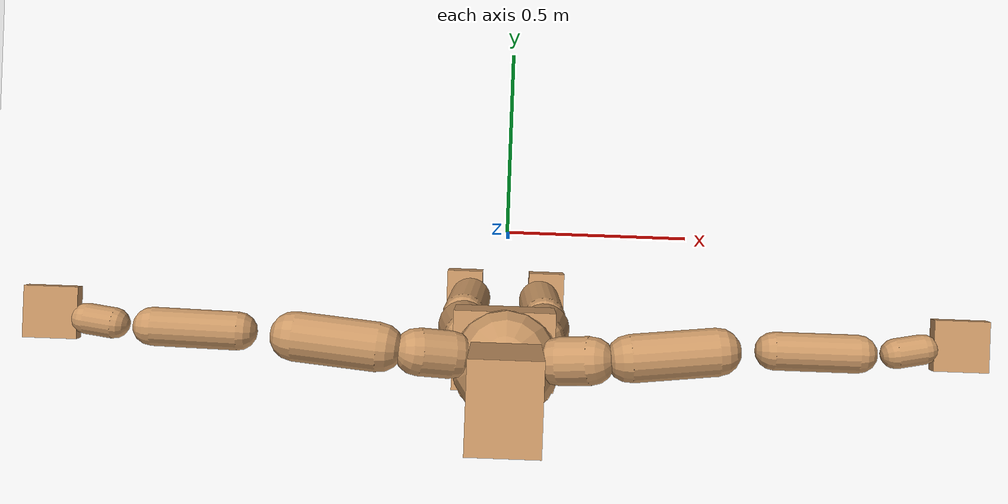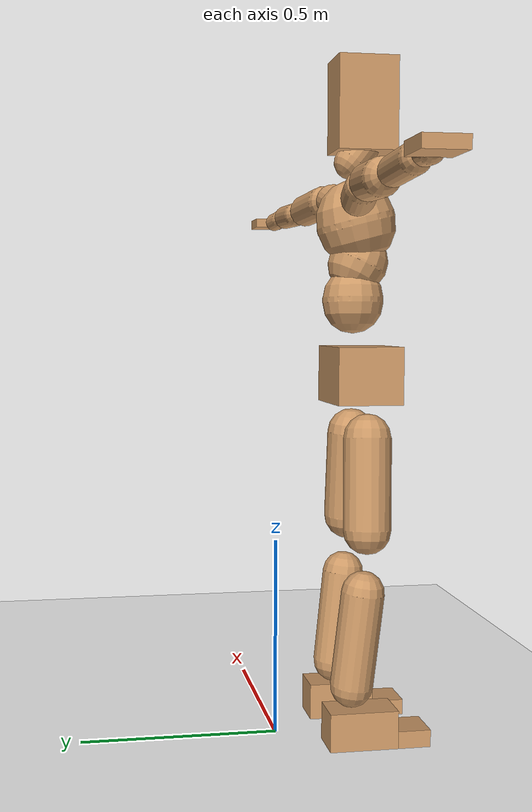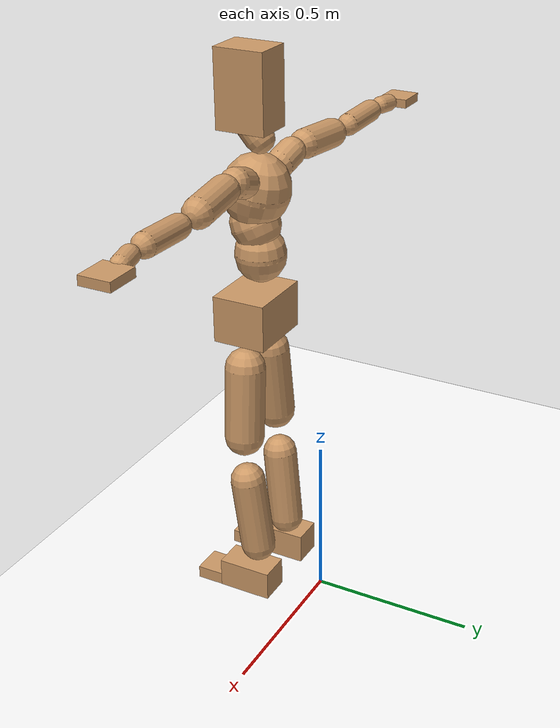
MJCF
<mujoco model="humanoid">
  <option integrator="implicitfast" />

  <visual>
    <global offwidth="1280" offheight="960" />
    <headlight active="1" ambient="0.34 0.34 0.34" diffuse="0.5 0.5 0.5" />
  </visual>

  <default>
    <joint damping="2" stiffness="2" armature="0.01" limited="true" solimplimit="0 .99 .01" />
    <geom condim="1" friction="0.7 0.005 0.0001" solimp=".99 .99 .003" solref="0.015 1" margin="0.001" rgba="0.8 0.6 .4 1" />
    <default class="smplcontact">
      <geom condim="3" friction="1. 0.005 0.0001" solref="0.015 1" solimp="0.98 0.98 0.001" priority="1" />
    </default>
    <default class="stiff_medium">
      <joint stiffness="10" />
    </default>
    <default class="stiff_medium_higher">
      <joint stiffness="50" />
    </default>
    <default class="stiff_high">
      <joint stiffness="100" />
    </default>
  </default>

  <asset>
    <texture type="skybox" builtin="gradient" rgb1="0.99 0.99 0.99" rgb2="0.608 0.828 0.892" width="100" />
    <texture builtin="flat" height="1278" mark="cross" markrgb="1 1 1" name="texgeom" random="0.01" rgb1="0.8 0.6 0.4" rgb2="0.8 0.6 0.4" type="cube" width="127" />
    <texture name="texplane" type="2d" builtin="checker" markrgb="1 1 1" rgb1="0.756 0.772 0.76" rgb2="0.6 0.6 0.6" width="100" height="100" />
    <material name="MatPlane" reflectance="0.5" texture="texplane" texrepeat="1 1" texuniform="true" />
    <material name="geom" texture="texgeom" texuniform="true" />
  </asset>

  <worldbody>
    <light name="tracking_light" pos="0 0 7" dir="0 0 -1" directional="true" cutoff="100" exponent="1" diffuse="1 1 1" specular="0.1 0.1 0.1" mode="trackcom" />
    <camera name="back" pos="0 3 2.4" xyaxes="-1 0 0 0 -1 2" mode="trackcom" />
    <camera name="side" pos="-3 0 2.4" xyaxes="0 -1 0 1 0 2" mode="trackcom" />
    <camera name="front_side" pos="-2.8 -2.8 0.8" xyaxes="0.5 -0.5 0 0.1 0.1 1" mode="trackcom" />
    <geom condim="3" name="floor" pos="0 0 0" rgba="1 1 1 1" size="100 100 .2" type="plane" material="MatPlane" />
    <body name="Pelvis" pos="-0.0018 -0.2233 0.9367" euler="90 0 0">
      <site name="Pelvis" size="0.01" />
      <freejoint name="Pelvis" />
      <geom type="box" pos="-0.0000 -0.0121 -0.0055" size="0.1069 0.0722 0.083" quat="1.0000 0.0000 0.0000 0.0000" density="3165.830099" name="Pelvis" />
      <body name="L_Hip" pos="0.0695 -0.0914 -0.0068">
        <joint name="L_Hip_x" type="hinge" pos="0 0 0" axis="1 0 0" stiffness="10.0" range="-160.0 22.92" class="stiff_medium" damping="14.999999999999998" armature="0.009999999999999998"/>
        <joint name="L_Hip_y" type="hinge" pos="0 0 0" axis="0 1 0" stiffness="10.0" range="-70.0 70.0" class="stiff_medium" damping="10.000000000000004" armature="0.01000000000000001"/>
        <joint name="L_Hip_z" type="hinge" pos="0 0 0" axis="0 0 1" stiffness="10.0" range="-28.65 90.0" class="stiff_medium" damping="10.0" armature="0.01"/>
        <geom type="capsule" density="2040.816327" fromto="0.0069 -0.075 -0.0009 0.0274 -0.3002 -0.0036" size="0.0615" name="L_Hip" />
        <body name="L_Knee" pos="0.0343 -0.3752 -0.0045">
          <joint name="L_Knee_x" type="hinge" pos="0 0 0" axis="1 0 0" range="-5.16 171.89" damping="7.999999999999995" armature="0.009999999999999986" stiffness="2.0"/>
          <joint name="L_Knee_y" type="hinge" pos="0 0 0" axis="0 1 0" range="-4.58 6.88" damping="8.000000000000004" armature="0.010000000000000009" stiffness="2.0"/>
          <joint name="L_Knee_z" type="hinge" pos="0 0 0" axis="0 0 1" range="-6.88 4.58" damping="7.999999999999997" armature="0.009999999999999993" stiffness="2.0"/>
          <geom type="capsule" density="1234.567901" fromto="-0.0027 -0.0796 -0.0087 -0.0109 -0.3184 -0.035" size="0.0541" name="L_Knee" />
          <body name="L_Ankle" pos="-0.0136 -0.398 -0.0437">
            <joint name="L_Ankle_x" type="hinge" pos="0 0 0" axis="1 0 0" range="-45.84 45.84" class="stiff_medium" damping="5.999999999999998" armature="0.009999999999999993" stiffness="10.0"/>
            <joint name="L_Ankle_y" type="hinge" pos="0 0 0" axis="0 1 0" range="-74.48 22.92" class="stiff_medium" damping="3.000000000000001" armature="0.010000000000000005" stiffness="10.0"/>
            <joint name="L_Ankle_z" type="hinge" pos="0 0 0" axis="0 0 1" range="-4.58 4.58" class="stiff_medium" damping="5.999999999999854" armature="0.009999999999999516" stiffness="10.0"/>
            <geom type="box" pos="0.0233 -0.0239 0.0242" size="0.0483 0.0464 0.085" quat="1.0000 0.0000 0.0000 0.0000" density="449.071558" name="L_Ankle" class="smplcontact" />
            <body name="L_Toe" pos="0.0264 -0.0558 0.1193">
              <joint name="L_Toe_x" type="hinge" pos="0 0 0" axis="1 0 0" range="-91.67 22.92" armature="0.00999999999999797" damping="1.999999999999797" stiffness="2.0"/>
              <joint name="L_Toe_y" type="hinge" pos="0 0 0" axis="0 1 0" range="-4.58 4.58" armature="0.01" damping="2.0" stiffness="2.0"/>
              <joint name="L_Toe_z" type="hinge" pos="0 0 0" axis="0 0 1" range="-4.58 4.58" armature="0.009999999999997513" damping="1.9999999999997513" stiffness="2.0"/>
              <geom type="box" pos="-0.003 0.0055 0.0248" size="0.0478 0.02 0.0496" quat="1.0000 0.0000 0.0000 0.0000" density="423.206892" name="L_Toe" class="smplcontact" />
            </body>
          </body>
        </body>
      </body>
      <body name="R_Hip" pos="-0.0677 -0.0905 -0.0043">
        <joint name="R_Hip_x" type="hinge" pos="0 0 0" axis="1 0 0" stiffness="10.0" range="-160.0 22.92" class="stiff_medium" damping="14.999999999999998" armature="0.009999999999999998"/>
        <joint name="R_Hip_y" type="hinge" pos="0 0 0" axis="0 1 0" stiffness="10.0" range="-70.0 70.0" class="stiff_medium" damping="10.000000000000004" armature="0.01000000000000001"/>
        <joint name="R_Hip_z" type="hinge" pos="0 0 0" axis="0 0 1" stiffness="10.0" range="-90.0 28.65" class="stiff_medium" damping="10.0" armature="0.01"/>
        <geom type="capsule" density="2040.816327" fromto="-0.0077 -0.0765 -0.0018 -0.0306 -0.3061 -0.0071" size="0.0606" name="R_Hip" />
        <body name="R_Knee" pos="-0.0383 -0.3826 -0.0089">
          <joint name="R_Knee_x" type="hinge" pos="0 0 0" axis="1 0 0" range="-5.16 171.89" damping="7.999999999999995" armature="0.009999999999999986" stiffness="2.0"/>
          <joint name="R_Knee_y" type="hinge" pos="0 0 0" axis="0 1 0" range="-6.88 4.58" damping="8.000000000000004" armature="0.010000000000000009" stiffness="2.0"/>
          <joint name="R_Knee_z" type="hinge" pos="0 0 0" axis="0 0 1" range="-4.58 6.88" damping="7.999999999999997" armature="0.009999999999999993" stiffness="2.0"/>
          <geom type="capsule" density="1234.567901" fromto="0.0032 -0.0797 -0.0085 0.0126 -0.3187 -0.0338" size="0.0541" name="R_Knee" />
          <body name="R_Ankle" pos="0.0158 -0.3984 -0.0423">
            <joint name="R_Ankle_x" type="hinge" pos="0 0 0" axis="1 0 0" range="-45.84 45.84" class="stiff_medium" damping="5.999999999999998" armature="0.009999999999999993" stiffness="10.0"/>
            <joint name="R_Ankle_y" type="hinge" pos="0 0 0" axis="0 1 0" range="-22.92 74.48" class="stiff_medium" damping="3.000000000000001" armature="0.010000000000000005" stiffness="10.0"/>
            <joint name="R_Ankle_z" type="hinge" pos="0 0 0" axis="0 0 1" range="-4.58 4.58" class="stiff_medium" damping="5.999999999999854" armature="0.009999999999999516" stiffness="10.0"/>
            <geom type="box" pos="-0.0212 -0.0174 0.0256" size="0.0483 0.0478 0.0865" quat="1.0000 0.0000 0.0000 0.0000" density="434.700981" name="R_Ankle" class="smplcontact" />
            <body name="R_Toe" pos="-0.0254 -0.0481 0.1233">
              <joint name="R_Toe_x" type="hinge" pos="0 0 0" axis="1 0 0" range="-91.67 22.92" armature="0.00999999999999797" damping="1.999999999999797" stiffness="2.0"/>
              <joint name="R_Toe_y" type="hinge" pos="0 0 0" axis="0 1 0" range="-4.58 4.58" armature="0.01" damping="2.0" stiffness="2.0"/>
              <joint name="R_Toe_z" type="hinge" pos="0 0 0" axis="0 0 1" range="-4.58 4.58" armature="0.009999999999997513" damping="1.9999999999997513" stiffness="2.0"/>
              <geom type="box" pos="0.0042 0.0045 0.0227" size="0.0479 0.0216 0.0493" quat="1.0000 0.0000 0.0000 0.0000" density="407.384095" name="R_Toe" class="smplcontact" />
            </body>
          </body>
        </body>
      </body>
      <body name="Torso" pos="-0.0025 0.109 -0.0267">
        <joint name="Torso_x" type="hinge" pos="0 0 0" axis="1 0 0" range="-25.78 57.3" class="stiff_medium" damping="13.469708142448871" armature="0.009028587369213336" stiffness="8.931287058823528"/>
        <joint name="Torso_y" type="hinge" pos="0 0 0" axis="0 1 0" range="-57.3 57.3" class="stiff_high" damping="15.774788625521023" armature="0.006903114127630073" stiffness="90.12018039215684"/>
        <joint name="Torso_z" type="hinge" pos="0 0 0" axis="0 0 1" range="-34.38 34.38" class="stiff_high" damping="17.425169137497218" armature="0.008295886649589074" stiffness="91.50213"/>
        <geom type="capsule" density="2040.816327" fromto="0.0025 0.0608 0.0005 0.003 0.0743 0.0006" size="0.0769" name="Torso" />
        <body name="Spine" pos="0.0055 0.1352 0.0011">
          <joint name="Spine_x" type="hinge" pos="0 0 0" axis="1 0 0" stiffness="8.895824509803921" range="-25.78 57.3" class="stiff_medium" damping="13.544372535574256" armature="0.00916535003736198"/>
          <joint name="Spine_y" type="hinge" pos="0 0 0" axis="0 1 0" stiffness="8.994280408163265" range="-57.3 57.3" class="stiff_high" damping="6.293783682477451" armature="0.006881406718392737"/>
          <joint name="Spine_z" type="hinge" pos="0 0 0" axis="0 0 1" stiffness="17.718172799999998" range="-34.38 34.38" class="stiff_high" damping="10.036184645432812" armature="0.007895613053315813"/>
          <geom type="capsule" density="2040.816327" fromto="0.0007 0.0238 0.0114 0.0008 0.0291 0.014" size="0.0755" name="Spine" />
          <body name="Chest" pos="0.0015 0.0529 0.0254">
            <joint name="Chest_x" type="hinge" pos="0 0 0" axis="1 0 0" stiffness="8.91663367346939" range="-25.78 57.3" class="stiff_medium" damping="13.612773830607457" armature="0.009236550631066905"/>
            <joint name="Chest_y" type="hinge" pos="0 0 0" axis="0 1 0" stiffness="8.175387727272728" range="-57.3 57.3" class="stiff_high" damping="5.993335911984733" armature="0.006865132225254076"/>
            <joint name="Chest_z" type="hinge" pos="0 0 0" axis="0 0 1" stiffness="18.13902723404255" range="-34.38 34.38" class="stiff_high" damping="10.03153662159117" armature="0.00770528020511788"/>
            <geom type="capsule" density="2040.816327" fromto="-0.0009 0.0682 -0.0173 -0.001 0.0833 -0.0212" size="0.1002" name="Chest" />
            <body name="Neck" pos="-0.0028 0.2139 -0.0429">
              <joint name="Neck_x" type="hinge" pos="0 0 0" axis="1 0 0" range="-28.65 57.3" class="stiff_medium_higher" damping="10.000000000000004" armature="0.01000000000000001" stiffness="50.0"/>
              <joint name="Neck_y" type="hinge" pos="0 0 0" axis="0 1 0" range="-40.11 40.11" class="stiff_medium_higher" damping="10.0" armature="0.01" stiffness="50.0"/>
              <joint name="Neck_z" type="hinge" pos="0 0 0" axis="0 0 1" range="-40.11 40.11" class="stiff_medium_higher" damping="10.0" armature="0.01" stiffness="50.0"/>
              <geom type="capsule" density="1000" fromto="0.001 0.013 0.0103 0.0041 0.052 0.0411" size="0.0436" name="Neck" />
              <body name="Head" pos="0.0052 0.065 0.0513">
                <joint name="Head_x" type="hinge" pos="0 0 0" axis="1 0 0" range="-28.65 57.3" class="stiff_medium_higher" damping="2.000000000000003" armature="0.010000000000000031" stiffness="50.0"/>
                <joint name="Head_y" type="hinge" pos="0 0 0" axis="0 1 0" range="-40.11 40.11" class="stiff_medium_higher" damping="1.9999999999999998" armature="0.009999999999999998" stiffness="50.0"/>
                <joint name="Head_z" type="hinge" pos="0 0 0" axis="0 0 1" range="-40.11 40.11" class="stiff_medium_higher" damping="2.000000000000005" armature="0.01000000000000005" stiffness="50.0"/>
                <geom type="box" pos="-0.0042 0.0876 -0.0116" size="0.0606 0.1154 0.076" quat="1.0000 0.0000 0.0000 0.0000" density="1018.069894" name="Head" />
                <geom type="capsule" name="nose" size="0.02 0.01" pos="0 0.07 0.05" quat="1 0 0 0" mass="0" contype="0" conaffinity="0" />
              </body>
            </body>
            <body name="L_Thorax" pos="0.0788 0.1217 -0.0341">
              <joint name="L_Thorax_x" type="hinge" pos="0 0 0" axis="1 0 0" range="-10.89 4.58" class="stiff_medium_higher" damping="12.707521241478297" armature="0.0059335418124171245" stiffness="34.018698529411765"/>
              <joint name="L_Thorax_y" type="hinge" pos="0 0 0" axis="0 1 0" range="-28.65 17.19" class="stiff_medium_higher" damping="13.56180306930205" armature="0.006732944846075368" stiffness="34.145999019607835"/>
              <joint name="L_Thorax_z" type="hinge" pos="0 0 0" axis="0 0 1" range="-31.51 40.11" class="stiff_medium_higher" damping="13.562307018625951" armature="0.006733672023335222" stiffness="34.14484901960785"/>
              <geom type="capsule" density="1000" fromto="0.0182 0.0061 -0.0018 0.0728 0.0244 -0.0071" size="0.044285" name="L_Thorax" />
              <body name="L_Shoulder" pos="0.091 0.0305 -0.0089">
                <joint name="L_Shoulder_x" type="hinge" pos="0 0 0" axis="1 0 0" range="-97.4 97.4" class="stiff_medium" damping="3.701155836194106" armature="0.005609202765381939" stiffness="6.783769803921569"/>
                <joint name="L_Shoulder_y" type="hinge" pos="0 0 0" axis="0 1 0" range="-108.86 80.21" class="stiff_medium" damping="4.055758313082386" armature="0.006699953950699951" stiffness="6.819771372549019"/>
                <joint name="L_Shoulder_z" type="hinge" pos="0 0 0" axis="0 0 1" range="-97.4 85.94" class="stiff_medium" damping="4.055211250179759" armature="0.006700852230927486" stiffness="6.817017745098038"/>
                <geom type="capsule" density="1000" fromto="0.0519 -0.0026 -0.0055 0.2077 -0.0102 -0.022" size="0.043945" name="L_Shoulder" />
                <body name="L_Elbow" pos="0.2596 -0.0128 -0.0275">
                  <joint name="L_Elbow_x" type="hinge" pos="0 0 0" axis="1 0 0" range="-17.19 4.58" damping="2.9272087753390954" armature="0.005111457216143838" stiffness="1.341073725490196"/>
                  <joint name="L_Elbow_y" type="hinge" pos="0 0 0" axis="0 1 0" range="-180.0 17.19" damping="3.3111632169261047" armature="0.006540134524540442" stiffness="1.3411102549019605"/>
                  <joint name="L_Elbow_z" type="hinge" pos="0 0 0" axis="0 0 1" range="-100.84 4.58" damping="3.311544831548825" armature="0.006544841121394618" stiffness="1.3404547450980393"/>
                  <geom type="capsule" density="1000" fromto="0.0498 0.0018 -0.0002 0.1994 0.0072 -0.0009" size="0.034425" name="L_Elbow" />
                  <body name="L_Wrist" pos="0.2492 0.009 -0.0012">
                    <joint name="L_Wrist_x" type="hinge" pos="0 0 0" axis="1 0 0" range="-180.0 22.92" armature="0.005007616888742388" damping="1.1267527337334955" stiffness="1.2676406274509804"/>
                    <joint name="L_Wrist_y" type="hinge" pos="0 0 0" axis="0 1 0" range="-17.19 17.19" armature="0.006037338335587136" damping="1.2398167394522108" stiffness="1.2730324705882352"/>
                    <joint name="L_Wrist_z" type="hinge" pos="0 0 0" axis="0 0 1" range="-22.92 22.92" armature="0.006093784916905229" damping="1.2446980529517493" stiffness="1.271191274509804"/>
                    <geom type="capsule" density="1000" fromto="0.0168 -0.0016 -0.003 0.0672 -0.0065 -0.012" size="0.02703" name="L_Wrist" class="smplcontact" />
                    <body name="L_Hand" pos="0.084 -0.0082 -0.0149">
                      <joint name="L_Hand_x" type="hinge" pos="0 0 0" axis="1 0 0" range="-17.19 17.19" armature="0.004511298439614833" damping="1.0527110057804963" stiffness="1.2282500000000003"/>
                      <joint name="L_Hand_y" type="hinge" pos="0 0 0" axis="0 1 0" range="-51.57 51.57" armature="0.005334947772850586" damping="1.1447837876213773" stiffness="1.2282500000000003"/>
                      <joint name="L_Hand_z" type="hinge" pos="0 0 0" axis="0 0 1" range="-91.67 91.67" armature="0.0055545027562121764" damping="1.1681025648732741" stiffness="1.2282500000000003"/>
                      <geom type="box" pos="0.0493 0.001 -0.0058" size="0.049725 0.01343 0.04573" quat="1.0000 0.0000 0.0000 0.0000" density="400.552564" name="L_Hand" class="smplcontact" />
                    </body>
                  </body>
                </body>
              </body>
            </body>
            <body name="R_Thorax" pos="-0.0818 0.1188 -0.0386">
              <joint name="R_Thorax_x" type="hinge" pos="0 0 0" axis="1 0 0" range="-10.89 4.58" class="stiff_medium_higher" damping="12.707521241478297" armature="0.0059335418124171245" stiffness="34.018698529411765"/>
              <joint name="R_Thorax_y" type="hinge" pos="0 0 0" axis="0 1 0" range="-17.19 28.65" class="stiff_medium_higher" damping="13.56180306930205" armature="0.006732944846075368" stiffness="34.145999019607835"/>
              <joint name="R_Thorax_z" type="hinge" pos="0 0 0" axis="0 0 1" range="-40.11 31.51" class="stiff_medium_higher" damping="13.562307018625951" armature="0.006733672023335222" stiffness="34.14484901960785"/>
              <geom type="capsule" density="1000" fromto="-0.0192 0.0065 -0.0018 -0.0768 0.026 -0.0073" size="0.043435" name="R_Thorax" />
              <body name="R_Shoulder" pos="-0.096 0.0326 -0.0091">
                <joint name="R_Shoulder_x" type="hinge" pos="0 0 0" axis="1 0 0" range="-97.4 97.4" class="stiff_medium" damping="3.701155836194106" armature="0.005609202765381939" stiffness="6.783769803921569"/>
                <joint name="R_Shoulder_y" type="hinge" pos="0 0 0" axis="0 1 0" range="-80.21 108.86" class="stiff_medium" damping="4.055758313082386" armature="0.006699953950699951" stiffness="6.819771372549019"/>
                <joint name="R_Shoulder_z" type="hinge" pos="0 0 0" axis="0 0 1" range="-85.94 97.4" class="stiff_medium" damping="4.055211250179759" armature="0.006700852230927486" stiffness="6.817017745098038"/>
                <geom type="capsule" density="1000" fromto="-0.0507 -0.0027 -0.0043 -0.203 -0.0107 -0.0171" size="0.045135" name="R_Shoulder" />
                <body name="R_Elbow" pos="-0.2537 -0.0133 -0.0214">
                  <joint name="R_Elbow_x" type="hinge" pos="0 0 0" axis="1 0 0" range="-17.19 4.58" damping="2.9272087753390954" armature="0.005111457216143838" stiffness="1.341073725490196"/>
                  <joint name="R_Elbow_y" type="hinge" pos="0 0 0" axis="0 1 0" range="-17.19 180.0" damping="3.3111632169261047" armature="0.006540134524540442" stiffness="1.3411102549019605"/>
                  <joint name="R_Elbow_z" type="hinge" pos="0 0 0" axis="0 0 1" range="-4.58 100.84" damping="3.311544831548825" armature="0.006544841121394618" stiffness="1.3404547450980393"/>
                  <geom type="capsule" density="1000" fromto="-0.0511 0.0016 -0.0011 -0.2042 0.0062 -0.0044" size="0.03468" name="R_Elbow" />
                  <body name="R_Wrist" pos="-0.2553 0.0078 -0.0056">
                    <joint name="R_Wrist_x" type="hinge" pos="0 0 0" axis="1 0 0" range="-180.0 22.92" armature="0.005007616888742388" damping="1.1267527337334955" stiffness="1.2676406274509804"/>
                    <joint name="R_Wrist_y" type="hinge" pos="0 0 0" axis="0 1 0" range="-17.19 17.19" armature="0.006037338335587136" damping="1.2398167394522108" stiffness="1.2730324705882352"/>
                    <joint name="R_Wrist_z" type="hinge" pos="0 0 0" axis="0 0 1" range="-22.92 22.92" armature="0.006093784916905229" damping="1.2446980529517493" stiffness="1.271191274509804"/>
                    <geom type="capsule" density="1000" fromto="-0.0169 -0.0012 -0.0021 -0.0677 -0.0049 -0.0083" size="0.02771" name="R_Wrist" class="smplcontact" />
                    <body name="R_Hand" pos="-0.0846 -0.0061 -0.0103">
                      <joint name="R_Hand_x" type="hinge" pos="0 0 0" axis="1 0 0" range="-17.19 17.19" armature="0.004511298439614833" damping="1.0527110057804963" stiffness="1.2282500000000003"/>
                      <joint name="R_Hand_y" type="hinge" pos="0 0 0" axis="0 1 0" range="-51.57 51.57" armature="0.005334947772850586" damping="1.1447837876213773" stiffness="1.2282500000000003"/>
                      <joint name="R_Hand_z" type="hinge" pos="0 0 0" axis="0 0 1" range="-91.67 91.67" armature="0.0055545027562121764" damping="1.1681025648732741" stiffness="1.2282500000000003"/>
                      <geom type="box" pos="-0.0462 -0.0009 -0.0079" size="0.048365 0.01394 0.04641" quat="1.0000 0.0000 0.0000 0.0000" density="403.679611" name="R_Hand" class="smplcontact" />
                    </body>
                  </body>
                </body>
              </body>
            </body>
          </body>
        </body>
      </body>
    </body>
  </worldbody>
  <actuator>
    <general name="L_Hip_x" joint="L_Hip_x" biastype="affine" gainprm="287.33006409732246" biasprm="-215.3247604770444 -180.0 -1.9999999999999998" ctrllimited="true" ctrlrange="-1 1" forcerange="-360.0 360.0" />
    <general name="L_Hip_y" joint="L_Hip_y" biastype="affine" gainprm="219.9114857512855" biasprm="0.0 -180.0 -2.000000000000001" ctrllimited="true" ctrlrange="-1 1" forcerange="-360.0 360.0" />
    <general name="L_Hip_z" joint="L_Hip_z" biastype="affine" gainprm="186.3749841742145" biasprm="96.3683546488669 -180.0 -2.0" ctrllimited="true" ctrlrange="-1 1" forcerange="-360.0 360.0" />
    <general name="L_Knee_x" joint="L_Knee_x" biastype="affine" gainprm="278.10948965903646" biasprm="261.8988715665131 -180.0 -1.9999999999999987" ctrllimited="true" ctrlrange="-1 1" forcerange="-360.0 360.0" />
    <general name="L_Knee_y" joint="L_Knee_y" biastype="affine" gainprm="18.001325905069514" biasprm="3.612831551628262 -180.0 -2.000000000000001" ctrllimited="true" ctrlrange="-1 1" forcerange="-360.0 360.0" />
    <general name="L_Knee_z" joint="L_Knee_z" biastype="affine" gainprm="18.001325905069514" biasprm="-3.612831551628262 -180.0 -1.9999999999999993" ctrllimited="true" ctrlrange="-1 1" forcerange="-360.0 360.0" />
    <general name="L_Ankle_x" joint="L_Ankle_x" biastype="affine" gainprm="72.00530362027807" biasprm="0.0 -90.0 -1.9999999999999993" ctrllimited="true" ctrlrange="-1 1" forcerange="-180.0 180.0" />
    <general name="L_Ankle_y" joint="L_Ankle_y" biastype="affine" gainprm="76.49778111491148" biasprm="-40.49512930477244 -90.0 -2.0000000000000004" ctrllimited="true" ctrlrange="-1 1" forcerange="-180.0 180.0" />
    <general name="L_Ankle_z" joint="L_Ankle_z" biastype="affine" gainprm="7.1942471767206255" biasprm="0.0 -90.0 -1.9999999999999516" ctrllimited="true" ctrlrange="-1 1" forcerange="-180.0 180.0" />
    <general name="L_Toe_x" joint="L_Toe_x" biastype="affine" gainprm="71.99902043497087" biasprm="-43.19689898685965 -72.0 -0.7999999999999189" ctrllimited="true" ctrlrange="-1 1" forcerange="-144.0 144.0" />
    <general name="L_Toe_y" joint="L_Toe_y" biastype="affine" gainprm="5.755397741376501" biasprm="0.0 -72.0 -0.8" ctrllimited="true" ctrlrange="-1 1" forcerange="-144.0 144.0" />
    <general name="L_Toe_z" joint="L_Toe_z" biastype="affine" gainprm="5.755397741376501" biasprm="0.0 -72.0 -0.7999999999999006" ctrllimited="true" ctrlrange="-1 1" forcerange="-144.0 144.0" />
    <general name="R_Hip_x" joint="R_Hip_x" biastype="affine" gainprm="287.33006409732246" biasprm="-215.3247604770444 -180.0 -1.9999999999999998" ctrllimited="true" ctrlrange="-1 1" forcerange="-360.0 360.0" />
    <general name="R_Hip_y" joint="R_Hip_y" biastype="affine" gainprm="219.9114857512855" biasprm="0.0 -180.0 -2.000000000000001" ctrllimited="true" ctrlrange="-1 1" forcerange="-360.0 360.0" />
    <general name="R_Hip_z" joint="R_Hip_z" biastype="affine" gainprm="186.3749841742145" biasprm="-96.3683546488669 -180.0 -2.0" ctrllimited="true" ctrlrange="-1 1" forcerange="-360.0 360.0" />
    <general name="R_Knee_x" joint="R_Knee_x" biastype="affine" gainprm="278.10948965903646" biasprm="261.8988715665131 -180.0 -1.9999999999999987" ctrllimited="true" ctrlrange="-1 1" forcerange="-360.0 360.0" />
    <general name="R_Knee_y" joint="R_Knee_y" biastype="affine" gainprm="18.001325905069514" biasprm="-3.612831551628262 -180.0 -2.000000000000001" ctrllimited="true" ctrlrange="-1 1" forcerange="-360.0 360.0" />
    <general name="R_Knee_z" joint="R_Knee_z" biastype="affine" gainprm="18.001325905069514" biasprm="3.612831551628262 -180.0 -1.9999999999999993" ctrllimited="true" ctrlrange="-1 1" forcerange="-360.0 360.0" />
    <general name="R_Ankle_x" joint="R_Ankle_x" biastype="affine" gainprm="72.00530362027807" biasprm="0.0 -90.0 -1.9999999999999993" ctrllimited="true" ctrlrange="-1 1" forcerange="-180.0 180.0" />
    <general name="R_Ankle_y" joint="R_Ankle_y" biastype="affine" gainprm="76.49778111491148" biasprm="40.49512930477244 -90.0 -2.0000000000000004" ctrllimited="true" ctrlrange="-1 1" forcerange="-180.0 180.0" />
    <general name="R_Ankle_z" joint="R_Ankle_z" biastype="affine" gainprm="7.1942471767206255" biasprm="0.0 -90.0 -1.9999999999999516" ctrllimited="true" ctrlrange="-1 1" forcerange="-180.0 180.0" />
    <general name="R_Toe_x" joint="R_Toe_x" biastype="affine" gainprm="71.99902043497087" biasprm="-43.19689898685965 -72.0 -0.7999999999999189" ctrllimited="true" ctrlrange="-1 1" forcerange="-144.0 144.0" />
    <general name="R_Toe_y" joint="R_Toe_y" biastype="affine" gainprm="5.755397741376501" biasprm="0.0 -72.0 -0.8" ctrllimited="true" ctrlrange="-1 1" forcerange="-144.0 144.0" />
    <general name="R_Toe_z" joint="R_Toe_z" biastype="affine" gainprm="5.755397741376501" biasprm="0.0 -72.0 -0.7999999999999006" ctrllimited="true" ctrlrange="-1 1" forcerange="-144.0 144.0" />
    <general name="Torso_x" joint="Torso_x" biastype="affine" gainprm="155.40648930575466" biasprm="58.960189491061456 -214.35088941176468 -3.591922171319699" ctrllimited="true" ctrlrange="-1 1" forcerange="-321.526334117647 321.526334117647" />
    <general name="Torso_y" joint="Torso_y" biastype="affine" gainprm="216.30436504838275" biasprm="0.0 -216.28843294117644 -3.1549577251042047" ctrllimited="true" ctrlrange="-1 1" forcerange="-324.43264941176466 324.43264941176466" />
    <general name="Torso_z" joint="Torso_z" biastype="affine" gainprm="131.7727730510431" biasprm="0.0 -219.605112 -3.4850338274994437" ctrllimited="true" ctrlrange="-1 1" forcerange="-329.407668 329.407668" />
    <general name="Spine_x" joint="Spine_x" biastype="affine" gainprm="154.78943263646693" biasprm="58.7260822905806 -213.49978823529412 -3.611832676153135" ctrllimited="true" ctrlrange="-1 1" forcerange="-320.2496823529412 320.2496823529412" />
    <general name="Spine_y" joint="Spine_y" biastype="affine" gainprm="215.8786305452381" biasprm="0.0 -215.86272979591834 -3.1468918412387255" ctrllimited="true" ctrlrange="-1 1" forcerange="-323.7940946938775 323.7940946938775" />
    <general name="Spine_z" joint="Spine_z" biastype="affine" gainprm="127.58024120605523" biasprm="0.0 -212.61807359999997 -3.345394881810937" ctrllimited="true" ctrlrange="-1 1" forcerange="-318.92711039999995 318.92711039999995" />
    <general name="Chest_x" joint="Chest_x" biastype="affine" gainprm="155.15151696421725" biasprm="58.863454678768974 -213.99920816326534 -3.630073021495322" ctrllimited="true" ctrlrange="-1 1" forcerange="-320.99881224489803 320.99881224489803" />
    <general name="Chest_y" joint="Chest_y" biastype="affine" gainprm="196.22375850525592" biasprm="0.0 -196.20930545454547 -2.9966679559923666" ctrllimited="true" ctrlrange="-1 1" forcerange="-294.31395818181824 294.31395818181824" />
    <general name="Chest_z" joint="Chest_z" biastype="affine" gainprm="130.61061633637266" biasprm="0.0 -217.6683268085106 -3.34384554053039" ctrllimited="true" ctrlrange="-1 1" forcerange="-326.5024902127659 326.5024902127659" />
    <general name="Neck_x" joint="Neck_x" biastype="affine" gainprm="27.00198885760427" biasprm="9.000662952534757 -36.0 -0.8000000000000004" ctrllimited="true" ctrlrange="-1 1" forcerange="-72.0 72.0" />
    <general name="Neck_y" joint="Neck_y" biastype="affine" gainprm="25.20185626709732" biasprm="0.0 -36.0 -0.8" ctrllimited="true" ctrlrange="-1 1" forcerange="-72.0 72.0" />
    <general name="Neck_z" joint="Neck_z" biastype="affine" gainprm="25.20185626709732" biasprm="0.0 -36.0 -0.8" ctrllimited="true" ctrlrange="-1 1" forcerange="-72.0 72.0" />
    <general name="Head_x" joint="Head_x" biastype="affine" gainprm="18.001325905069514" biasprm="6.000441968356505 -24.0 -0.8000000000000013" ctrllimited="true" ctrlrange="-1 1" forcerange="-48.0 48.0" />
    <general name="Head_y" joint="Head_y" biastype="affine" gainprm="16.801237511398213" biasprm="0.0 -24.0 -0.7999999999999999" ctrllimited="true" ctrlrange="-1 1" forcerange="-48.0 48.0" />
    <general name="Head_z" joint="Head_z" biastype="affine" gainprm="16.801237511398213" biasprm="0.0 -24.0 -0.800000000000002" ctrllimited="true" ctrlrange="-1 1" forcerange="-48.0 48.0" />
    <general name="L_Thorax_x" joint="L_Thorax_x" biastype="affine" gainprm="11.022157737740603" biasprm="-4.495786381715788 -81.64487647058823 -1.0166016993182638" ctrllimited="true" ctrlrange="-1 1" forcerange="-163.28975294117646 163.28975294117646" />
    <general name="L_Thorax_y" joint="L_Thorax_y" biastype="affine" gainprm="32.78257369099439" biasprm="-8.195643422748597 -81.95039764705881 -1.084944245544164" ctrllimited="true" ctrlrange="-1 1" forcerange="-163.90079529411761 163.90079529411761" />
    <general name="L_Thorax_z" joint="L_Thorax_z" biastype="affine" gainprm="51.21747062488492" biasprm="6.150101192041473 -81.94763764705884 -1.0849845614900762" ctrllimited="true" ctrlrange="-1 1" forcerange="-163.89527529411768 163.89527529411768" />
    <general name="L_Shoulder_x" joint="L_Shoulder_x" biastype="affine" gainprm="55.35395601006273" biasprm="0.0 -32.56209505882353 -0.9869748896517616" ctrllimited="true" ctrlrange="-1 1" forcerange="-65.12419011764706 65.12419011764706" />
    <general name="L_Shoulder_y" joint="L_Shoulder_y" biastype="affine" gainprm="54.01085459483514" biasprm="-8.184328471687875 -32.73490258823529 -1.081535550155303" ctrllimited="true" ctrlrange="-1 1" forcerange="-65.46980517647059 65.46980517647059" />
    <general name="L_Shoulder_z" joint="L_Shoulder_z" biastype="affine" gainprm="52.35284179076683" biasprm="-3.272409550137391 -32.72168517647059 -1.0813896667146023" ctrllimited="true" ctrlrange="-1 1" forcerange="-65.44337035294117 65.44337035294117" />
    <general name="L_Elbow_x" joint="L_Elbow_x" biastype="affine" gainprm="9.171934731258837" biasprm="-5.3127283859060155 -48.27865411764706 -0.46835340405425524" ctrllimited="true" ctrlrange="-1 1" forcerange="-96.55730823529412 96.55730823529412" />
    <general name="L_Elbow_y" joint="L_Elbow_y" biastype="affine" gainprm="83.08052707210712" biasprm="-68.59546940823451 -48.27996917647057 -0.5297861147081767" ctrllimited="true" ctrlrange="-1 1" forcerange="-96.55993835294115 96.55993835294115" />
    <general name="L_Elbow_z" joint="L_Elbow_z" biastype="affine" gainprm="44.3940780232767" biasprm="-40.53665291709937 -48.256370823529416 -0.529847173047812" ctrllimited="true" ctrlrange="-1 1" forcerange="-96.51274164705883 96.51274164705883" />
    <general name="L_Wrist_x" joint="L_Wrist_x" biastype="affine" gainprm="13.468512252125995" biasprm="-10.42595064342574 -7.605843764705883 -0.4507010934933982" ctrllimited="true" ctrlrange="-1 1" forcerange="-15.211687529411765 15.211687529411765" />
    <general name="L_Wrist_y" joint="L_Wrist_y" biastype="affine" gainprm="2.2916272390794648" biasprm="0.0 -7.638194823529411 -0.49592669578088433" ctrllimited="true" ctrlrange="-1 1" forcerange="-15.276389647058823 15.276389647058823" />
    <general name="L_Wrist_z" joint="L_Wrist_z" biastype="affine" gainprm="3.0510837893508893" biasprm="0.0 -7.627147647058823 -0.4978792211806997" ctrllimited="true" ctrlrange="-1 1" forcerange="-15.254295294117647 15.254295294117647" />
    <general name="L_Hand_x" joint="L_Hand_x" biastype="affine" gainprm="2.211012854290164" biasprm="0.0 -7.369500000000002 -0.4210844023121985" ctrllimited="true" ctrlrange="-1 1" forcerange="-14.739000000000004 14.739000000000004" />
    <general name="L_Hand_y" joint="L_Hand_y" biastype="affine" gainprm="6.633038562870491" biasprm="0.0 -7.369500000000002 -0.45791351504855093" ctrllimited="true" ctrlrange="-1 1" forcerange="-14.739000000000004 14.739000000000004" />
    <general name="L_Hand_z" joint="L_Hand_z" biastype="affine" gainprm="11.790782335821948" biasprm="0.0 -7.369500000000002 -0.46724102594930966" ctrllimited="true" ctrlrange="-1 1" forcerange="-14.739000000000004 14.739000000000004" />
    <general name="R_Thorax_x" joint="R_Thorax_x" biastype="affine" gainprm="11.022157737740603" biasprm="-4.495786381715788 -81.64487647058823 -1.0166016993182638" ctrllimited="true" ctrlrange="-1 1" forcerange="-163.28975294117646 163.28975294117646" />
    <general name="R_Thorax_y" joint="R_Thorax_y" biastype="affine" gainprm="32.78257369099439" biasprm="8.195643422748592 -81.95039764705881 -1.084944245544164" ctrllimited="true" ctrlrange="-1 1" forcerange="-163.90079529411761 163.90079529411761" />
    <general name="R_Thorax_z" joint="R_Thorax_z" biastype="affine" gainprm="51.21747062488492" biasprm="-6.150101192041473 -81.94763764705884 -1.0849845614900762" ctrllimited="true" ctrlrange="-1 1" forcerange="-163.89527529411768 163.89527529411768" />
    <general name="R_Shoulder_x" joint="R_Shoulder_x" biastype="affine" gainprm="55.35395601006273" biasprm="0.0 -32.56209505882353 -0.9869748896517616" ctrllimited="true" ctrlrange="-1 1" forcerange="-65.12419011764706 65.12419011764706" />
    <general name="R_Shoulder_y" joint="R_Shoulder_y" biastype="affine" gainprm="54.01085459483514" biasprm="8.184328471687875 -32.73490258823529 -1.081535550155303" ctrllimited="true" ctrlrange="-1 1" forcerange="-65.46980517647059 65.46980517647059" />
    <general name="R_Shoulder_z" joint="R_Shoulder_z" biastype="affine" gainprm="52.35284179076683" biasprm="3.2724095501373838 -32.72168517647059 -1.0813896667146023" ctrllimited="true" ctrlrange="-1 1" forcerange="-65.44337035294117 65.44337035294117" />
    <general name="R_Elbow_x" joint="R_Elbow_x" biastype="affine" gainprm="9.171934731258837" biasprm="-5.3127283859060155 -48.27865411764706 -0.46835340405425524" ctrllimited="true" ctrlrange="-1 1" forcerange="-96.55730823529412 96.55730823529412" />
    <general name="R_Elbow_y" joint="R_Elbow_y" biastype="affine" gainprm="83.08052707210712" biasprm="68.59546940823451 -48.27996917647057 -0.5297861147081767" ctrllimited="true" ctrlrange="-1 1" forcerange="-96.55993835294115 96.55993835294115" />
    <general name="R_Elbow_z" joint="R_Elbow_z" biastype="affine" gainprm="44.3940780232767" biasprm="40.53665291709937 -48.256370823529416 -0.529847173047812" ctrllimited="true" ctrlrange="-1 1" forcerange="-96.51274164705883 96.51274164705883" />
    <general name="R_Wrist_x" joint="R_Wrist_x" biastype="affine" gainprm="13.468512252125995" biasprm="-10.42595064342574 -7.605843764705883 -0.4507010934933982" ctrllimited="true" ctrlrange="-1 1" forcerange="-15.211687529411765 15.211687529411765" />
    <general name="R_Wrist_y" joint="R_Wrist_y" biastype="affine" gainprm="2.2916272390794648" biasprm="0.0 -7.638194823529411 -0.49592669578088433" ctrllimited="true" ctrlrange="-1 1" forcerange="-15.276389647058823 15.276389647058823" />
    <general name="R_Wrist_z" joint="R_Wrist_z" biastype="affine" gainprm="3.0510837893508893" biasprm="0.0 -7.627147647058823 -0.4978792211806997" ctrllimited="true" ctrlrange="-1 1" forcerange="-15.254295294117647 15.254295294117647" />
    <general name="R_Hand_x" joint="R_Hand_x" biastype="affine" gainprm="2.211012854290164" biasprm="0.0 -7.369500000000002 -0.4210844023121985" ctrllimited="true" ctrlrange="-1 1" forcerange="-14.739000000000004 14.739000000000004" />
    <general name="R_Hand_y" joint="R_Hand_y" biastype="affine" gainprm="6.633038562870491" biasprm="0.0 -7.369500000000002 -0.45791351504855093" ctrllimited="true" ctrlrange="-1 1" forcerange="-14.739000000000004 14.739000000000004" />
    <general name="R_Hand_z" joint="R_Hand_z" biastype="affine" gainprm="11.790782335821948" biasprm="0.0 -7.369500000000002 -0.46724102594930966" ctrllimited="true" ctrlrange="-1 1" forcerange="-14.739000000000004 14.739000000000004" />
  </actuator>
  <contact>
    <exclude body1="Torso" body2="Chest" />
    <exclude body1="Head" body2="Chest" />
    <exclude body1="R_Knee" body2="R_Toe" />
    <exclude body1="R_Knee" body2="L_Ankle" />
    <exclude body1="R_Knee" body2="L_Toe" />
    <exclude body1="L_Knee" body2="L_Toe" />
    <exclude body1="L_Knee" body2="R_Ankle" />
    <exclude body1="L_Knee" body2="R_Toe" />
    <exclude body1="L_Shoulder" body2="Chest" />
    <exclude body1="R_Shoulder" body2="Chest" />
  </contact>
  <sensor>
    <framelinvel name="sensor_Pelvis_framelinvel" objtype="xbody" objname="Pelvis" />
    <framelinvel name="sensor_L_Hip_framelinvel" objtype="xbody" objname="L_Hip" />
    <framelinvel name="sensor_L_Knee_framelinvel" objtype="xbody" objname="L_Knee" />
    <framelinvel name="sensor_L_Ankle_framelinvel" objtype="xbody" objname="L_Ankle" />
    <framelinvel name="sensor_L_Toe_framelinvel" objtype="xbody" objname="L_Toe" />
    <framelinvel name="sensor_R_Hip_framelinvel" objtype="xbody" objname="R_Hip" />
    <framelinvel name="sensor_R_Knee_framelinvel" objtype="xbody" objname="R_Knee" />
    <framelinvel name="sensor_R_Ankle_framelinvel" objtype="xbody" objname="R_Ankle" />
    <framelinvel name="sensor_R_Toe_framelinvel" objtype="xbody" objname="R_Toe" />
    <framelinvel name="sensor_Torso_framelinvel" objtype="xbody" objname="Torso" />
    <framelinvel name="sensor_Spine_framelinvel" objtype="xbody" objname="Spine" />
    <framelinvel name="sensor_Chest_framelinvel" objtype="xbody" objname="Chest" />
    <framelinvel name="sensor_Neck_framelinvel" objtype="xbody" objname="Neck" />
    <framelinvel name="sensor_Head_framelinvel" objtype="xbody" objname="Head" />
    <framelinvel name="sensor_L_Thorax_framelinvel" objtype="xbody" objname="L_Thorax" />
    <framelinvel name="sensor_L_Shoulder_framelinvel" objtype="xbody" objname="L_Shoulder" />
    <framelinvel name="sensor_L_Elbow_framelinvel" objtype="xbody" objname="L_Elbow" />
    <framelinvel name="sensor_L_Wrist_framelinvel" objtype="xbody" objname="L_Wrist" />
    <framelinvel name="sensor_L_Hand_framelinvel" objtype="xbody" objname="L_Hand" />
    <framelinvel name="sensor_R_Thorax_framelinvel" objtype="xbody" objname="R_Thorax" />
    <framelinvel name="sensor_R_Shoulder_framelinvel" objtype="xbody" objname="R_Shoulder" />
    <framelinvel name="sensor_R_Elbow_framelinvel" objtype="xbody" objname="R_Elbow" />
    <framelinvel name="sensor_R_Wrist_framelinvel" objtype="xbody" objname="R_Wrist" />
    <framelinvel name="sensor_R_Hand_framelinvel" objtype="xbody" objname="R_Hand" />
    <frameangvel name="sensor_Pelvis_frameangvel" objtype="xbody" objname="Pelvis" />
    <frameangvel name="sensor_L_Hip_frameangvel" objtype="xbody" objname="L_Hip" />
    <frameangvel name="sensor_L_Knee_frameangvel" objtype="xbody" objname="L_Knee" />
    <frameangvel name="sensor_L_Ankle_frameangvel" objtype="xbody" objname="L_Ankle" />
    <frameangvel name="sensor_L_Toe_frameangvel" objtype="xbody" objname="L_Toe" />
    <frameangvel name="sensor_R_Hip_frameangvel" objtype="xbody" objname="R_Hip" />
    <frameangvel name="sensor_R_Knee_frameangvel" objtype="xbody" objname="R_Knee" />
    <frameangvel name="sensor_R_Ankle_frameangvel" objtype="xbody" objname="R_Ankle" />
    <frameangvel name="sensor_R_Toe_frameangvel" objtype="xbody" objname="R_Toe" />
    <frameangvel name="sensor_Torso_frameangvel" objtype="xbody" objname="Torso" />
    <frameangvel name="sensor_Spine_frameangvel" objtype="xbody" objname="Spine" />
    <frameangvel name="sensor_Chest_frameangvel" objtype="xbody" objname="Chest" />
    <frameangvel name="sensor_Neck_frameangvel" objtype="xbody" objname="Neck" />
    <frameangvel name="sensor_Head_frameangvel" objtype="xbody" objname="Head" />
    <frameangvel name="sensor_L_Thorax_frameangvel" objtype="xbody" objname="L_Thorax" />
    <frameangvel name="sensor_L_Shoulder_frameangvel" objtype="xbody" objname="L_Shoulder" />
    <frameangvel name="sensor_L_Elbow_frameangvel" objtype="xbody" objname="L_Elbow" />
    <frameangvel name="sensor_L_Wrist_frameangvel" objtype="xbody" objname="L_Wrist" />
    <frameangvel name="sensor_L_Hand_frameangvel" objtype="xbody" objname="L_Hand" />
    <frameangvel name="sensor_R_Thorax_frameangvel" objtype="xbody" objname="R_Thorax" />
    <frameangvel name="sensor_R_Shoulder_frameangvel" objtype="xbody" objname="R_Shoulder" />
    <frameangvel name="sensor_R_Elbow_frameangvel" objtype="xbody" objname="R_Elbow" />
    <frameangvel name="sensor_R_Wrist_frameangvel" objtype="xbody" objname="R_Wrist" />
    <frameangvel name="sensor_R_Hand_frameangvel" objtype="xbody" objname="R_Hand" />
    <subtreelinvel name="Chest_subtreelinvel" body="Chest" />
    <gyro name="Pelvis_gyro" site="Pelvis" />
  </sensor>
</mujoco>
